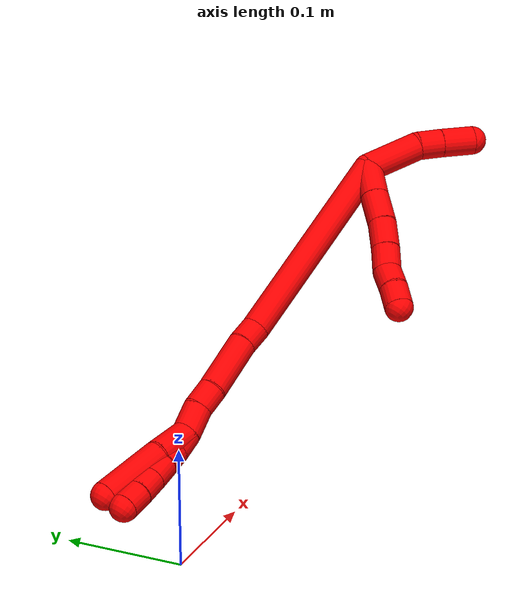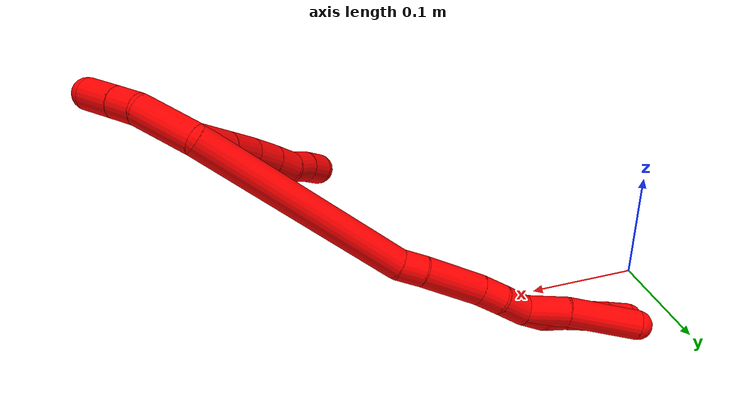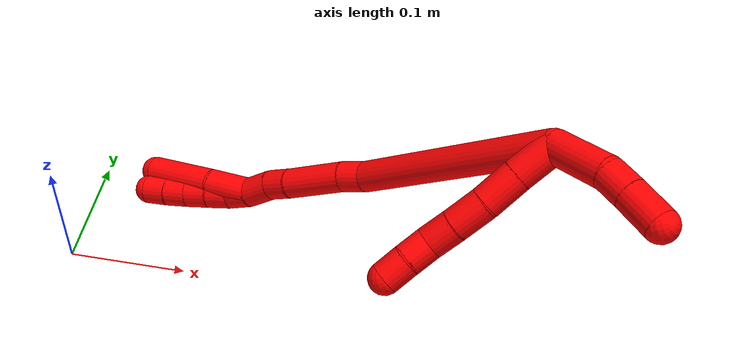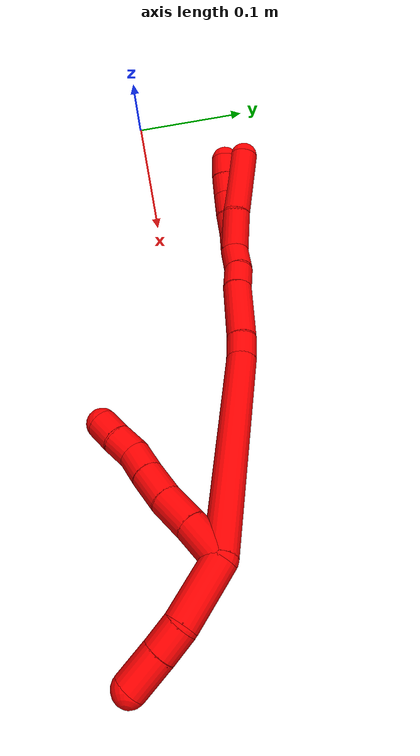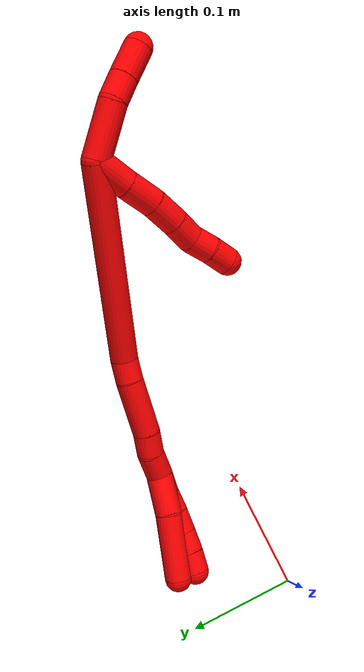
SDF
<sdf version="1.7">
 <world name="default">
  <model name="2">
   <static>0</static>
   <link name="2">
    <collision name="collision-cylinder-e_1_2_8">
     <pose>-0.004548 -0.010195 -0.011617 2.42126 -0.286192 -0.730817</pose>
     <geometry><cylinder><radius>0.0125</radius><length>0.032223</length></cylinder></geometry>
     <surface>
      <friction><ode><mu>1.16</mu><mu2>1.16</mu2><slip1>0</slip1><slip2>0</slip2></ode></friction>
      <contact><ode><kp>1e+06</kp><kd>1</kd><max_vel>0</max_vel><min_depth>0.001</min_depth></ode></contact>
     </surface>
    </collision>
    <visual name="visual-cylinder-e_1_2_8">
     <pose>-0.004548 -0.010195 -0.011617 2.42126 -0.286192 -0.730817</pose>
     <geometry><cylinder><radius>0.0125</radius><length>0.032223</length></cylinder></geometry>
     <material><ambient>1 0 0 1</ambient></material>
    </visual>
    <collision name="collision-cylinder-e_2_8_9">
     <pose>-0.013043 -0.030067 -0.03327 2.3745 -0.27586 -0.662628</pose>
     <geometry><cylinder><radius>0.0125</radius><length>0.028978</length></cylinder></geometry>
     <surface>
      <friction><ode><mu>1.16</mu><mu2>1.16</mu2><slip1>0</slip1><slip2>0</slip2></ode></friction>
      <contact><ode><kp>1e+06</kp><kd>1</kd><max_vel>0</max_vel><min_depth>0.001</min_depth></ode></contact>
     </surface>
    </collision>
    <visual name="visual-cylinder-e_2_8_9">
     <pose>-0.013043 -0.030067 -0.03327 2.3745 -0.27586 -0.662628</pose>
     <geometry><cylinder><radius>0.0125</radius><length>0.028978</length></cylinder></geometry>
     <material><ambient>1 0 0 1</ambient></material>
    </visual>
    <collision name="collision-cylinder-e_3_9_10">
     <pose>-0.02032 -0.047425 -0.053485 2.49503 -0.255484 -0.732169</pose>
     <geometry><cylinder><radius>0.0125</radius><length>0.026359</length></cylinder></geometry>
     <surface>
      <friction><ode><mu>1.16</mu><mu2>1.16</mu2><slip1>0</slip1><slip2>0</slip2></ode></friction>
      <contact><ode><kp>1e+06</kp><kd>1</kd><max_vel>0</max_vel><min_depth>0.001</min_depth></ode></contact>
     </surface>
    </collision>
    <visual name="visual-cylinder-e_3_9_10">
     <pose>-0.02032 -0.047425 -0.053485 2.49503 -0.255484 -0.732169</pose>
     <geometry><cylinder><radius>0.0125</radius><length>0.026359</length></cylinder></geometry>
     <material><ambient>1 0 0 1</ambient></material>
    </visual>
    <collision name="collision-cylinder-e_4_10_11">
     <pose>-0.026161 -0.061162 -0.07268 2.55022 -0.227138 -0.71655</pose>
     <geometry><cylinder><radius>0.0125</radius><length>0.022295</length></cylinder></geometry>
     <surface>
      <friction><ode><mu>1.16</mu><mu2>1.16</mu2><slip1>0</slip1><slip2>0</slip2></ode></friction>
      <contact><ode><kp>1e+06</kp><kd>1</kd><max_vel>0</max_vel><min_depth>0.001</min_depth></ode></contact>
     </surface>
    </collision>
    <visual name="visual-cylinder-e_4_10_11">
     <pose>-0.026161 -0.061162 -0.07268 2.55022 -0.227138 -0.71655</pose>
     <geometry><cylinder><radius>0.0125</radius><length>0.022295</length></cylinder></geometry>
     <material><ambient>1 0 0 1</ambient></material>
    </visual>
    <collision name="collision-cylinder-e_5_11_12">
     <pose>-0.032763 -0.074 -0.087866 2.30889 -0.41977 -0.897853</pose>
     <geometry><cylinder><radius>0.0125</radius><length>0.02008</length></cylinder></geometry>
     <surface>
      <friction><ode><mu>1.16</mu><mu2>1.16</mu2><slip1>0</slip1><slip2>0</slip2></ode></friction>
      <contact><ode><kp>1e+06</kp><kd>1</kd><max_vel>0</max_vel><min_depth>0.001</min_depth></ode></contact>
     </surface>
    </collision>
    <visual name="visual-cylinder-e_5_11_12">
     <pose>-0.032763 -0.074 -0.087866 2.30889 -0.41977 -0.897853</pose>
     <geometry><cylinder><radius>0.0125</radius><length>0.02008</length></cylinder></geometry>
     <material><ambient>1 0 0 1</ambient></material>
    </visual>
    <collision name="collision-cylinder-e_6_12_6">
     <pose>-0.039939 -0.087379 -0.100935 2.37867 -0.312443 -0.748347</pose>
     <geometry><cylinder><radius>0.0125</radius><length>0.020065</length></cylinder></geometry>
     <surface>
      <friction><ode><mu>1.16</mu><mu2>1.16</mu2><slip1>0</slip1><slip2>0</slip2></ode></friction>
      <contact><ode><kp>1e+06</kp><kd>1</kd><max_vel>0</max_vel><min_depth>0.001</min_depth></ode></contact>
     </surface>
    </collision>
    <visual name="visual-cylinder-e_6_12_6">
     <pose>-0.039939 -0.087379 -0.100935 2.37867 -0.312443 -0.748347</pose>
     <geometry><cylinder><radius>0.0125</radius><length>0.020065</length></cylinder></geometry>
     <material><ambient>1 0 0 1</ambient></material>
    </visual>
    <collision name="collision-cylinder-e_1_2_13">
     <pose>0.001997 -0.012794 0.020894 0.549448 0.081314 0.02293</pose>
     <geometry><cylinder><radius>0.0125</radius><length>0.049163</length></cylinder></geometry>
     <surface>
      <friction><ode><mu>1.16</mu><mu2>1.16</mu2><slip1>0</slip1><slip2>0</slip2></ode></friction>
      <contact><ode><kp>1e+06</kp><kd>1</kd><max_vel>0</max_vel><min_depth>0.001</min_depth></ode></contact>
     </surface>
    </collision>
    <visual name="visual-cylinder-e_1_2_13">
     <pose>0.001997 -0.012794 0.020894 0.549448 0.081314 0.02293</pose>
     <geometry><cylinder><radius>0.0125</radius><length>0.049163</length></cylinder></geometry>
     <material><ambient>1 0 0 1</ambient></material>
    </visual>
    <collision name="collision-cylinder-e_2_13_14">
     <pose>0.006179 -0.033266 0.04914 0.807061 0.202752 0.08681</pose>
     <geometry><cylinder><radius>0.0125</radius><length>0.021705</length></cylinder></geometry>
     <surface>
      <friction><ode><mu>1.16</mu><mu2>1.16</mu2><slip1>0</slip1><slip2>0</slip2></ode></friction>
      <contact><ode><kp>1e+06</kp><kd>1</kd><max_vel>0</max_vel><min_depth>0.001</min_depth></ode></contact>
     </surface>
    </collision>
    <visual name="visual-cylinder-e_2_13_14">
     <pose>0.006179 -0.033266 0.04914 0.807061 0.202752 0.08681</pose>
     <geometry><cylinder><radius>0.0125</radius><length>0.021705</length></cylinder></geometry>
     <material><ambient>1 0 0 1</ambient></material>
    </visual>
    <collision name="collision-cylinder-e_3_14_5">
     <pose>0.011244 -0.051591 0.066007 0.841483 0.19906 0.089308</pose>
     <geometry><cylinder><radius>0.0125</radius><length>0.029132</length></cylinder></geometry>
     <surface>
      <friction><ode><mu>1.16</mu><mu2>1.16</mu2><slip1>0</slip1><slip2>0</slip2></ode></friction>
      <contact><ode><kp>1e+06</kp><kd>1</kd><max_vel>0</max_vel><min_depth>0.001</min_depth></ode></contact>
     </surface>
    </collision>
    <visual name="visual-cylinder-e_3_14_5">
     <pose>0.011244 -0.051591 0.066007 0.841483 0.19906 0.089308</pose>
     <geometry><cylinder><radius>0.0125</radius><length>0.029132</length></cylinder></geometry>
     <material><ambient>1 0 0 1</ambient></material>
    </visual>
    <collision name="collision-cylinder-e_1_2_15">
     <pose>-0.004742 0.002223 -0.089656 -3.11681 -0.052825 2.2643</pose>
     <geometry><cylinder><radius>0.0125</radius><length>0.179617</length></cylinder></geometry>
     <surface>
      <friction><ode><mu>1.16</mu><mu2>1.16</mu2><slip1>0</slip1><slip2>0</slip2></ode></friction>
      <contact><ode><kp>1e+06</kp><kd>1</kd><max_vel>0</max_vel><min_depth>0.001</min_depth></ode></contact>
     </surface>
    </collision>
    <visual name="visual-cylinder-e_1_2_15">
     <pose>-0.004742 0.002223 -0.089656 -3.11681 -0.052825 2.2643</pose>
     <geometry><cylinder><radius>0.0125</radius><length>0.179617</length></cylinder></geometry>
     <material><ambient>1 0 0 1</ambient></material>
    </visual>
    <collision name="collision-cylinder-e_2_15_16">
     <pose>-0.012728 0.005115 -0.189192 -3.07391 -0.31661 2.72368</pose>
     <geometry><cylinder><radius>0.0125</radius><length>0.020841</length></cylinder></geometry>
     <surface>
      <friction><ode><mu>1.16</mu><mu2>1.16</mu2><slip1>0</slip1><slip2>0</slip2></ode></friction>
      <contact><ode><kp>1e+06</kp><kd>1</kd><max_vel>0</max_vel><min_depth>0.001</min_depth></ode></contact>
     </surface>
    </collision>
    <visual name="visual-cylinder-e_2_15_16">
     <pose>-0.012728 0.005115 -0.189192 -3.07391 -0.31661 2.72368</pose>
     <geometry><cylinder><radius>0.0125</radius><length>0.020841</length></cylinder></geometry>
     <material><ambient>1 0 0 1</ambient></material>
    </visual>
    <collision name="collision-cylinder-e_3_16_17">
     <pose>-0.02296 0.00472 -0.224334 3.09946 -0.269594 -2.83334</pose>
     <geometry><cylinder><radius>0.0125</radius><length>0.052465</length></cylinder></geometry>
     <surface>
      <friction><ode><mu>1.16</mu><mu2>1.16</mu2><slip1>0</slip1><slip2>0</slip2></ode></friction>
      <contact><ode><kp>1e+06</kp><kd>1</kd><max_vel>0</max_vel><min_depth>0.001</min_depth></ode></contact>
     </surface>
    </collision>
    <visual name="visual-cylinder-e_3_16_17">
     <pose>-0.02296 0.00472 -0.224334 3.09946 -0.269594 -2.83334</pose>
     <geometry><cylinder><radius>0.0125</radius><length>0.052465</length></cylinder></geometry>
     <material><ambient>1 0 0 1</ambient></material>
    </visual>
    <collision name="collision-cylinder-e_4_17_18">
     <pose>-0.031852 0.004113 -0.260098 -3.09795 -0.179318 2.66531</pose>
     <geometry><cylinder><radius>0.0125</radius><length>0.021365</length></cylinder></geometry>
     <surface>
      <friction><ode><mu>1.16</mu><mu2>1.16</mu2><slip1>0</slip1><slip2>0</slip2></ode></friction>
      <contact><ode><kp>1e+06</kp><kd>1</kd><max_vel>0</max_vel><min_depth>0.001</min_depth></ode></contact>
     </surface>
    </collision>
    <visual name="visual-cylinder-e_4_17_18">
     <pose>-0.031852 0.004113 -0.260098 -3.09795 -0.179318 2.66531</pose>
     <geometry><cylinder><radius>0.0125</radius><length>0.021365</length></cylinder></geometry>
     <material><ambient>1 0 0 1</ambient></material>
    </visual>
    <collision name="collision-cylinder-e_5_18_1">
     <pose>-0.035785 0.002449 -0.283115 2.97357 -0.158425 -1.51178</pose>
     <geometry><cylinder><radius>0.0125</radius><length>0.025711</length></cylinder></geometry>
     <surface>
      <friction><ode><mu>1.16</mu><mu2>1.16</mu2><slip1>0</slip1><slip2>0</slip2></ode></friction>
      <contact><ode><kp>1e+06</kp><kd>1</kd><max_vel>0</max_vel><min_depth>0.001</min_depth></ode></contact>
     </surface>
    </collision>
    <visual name="visual-cylinder-e_5_18_1">
     <pose>-0.035785 0.002449 -0.283115 2.97357 -0.158425 -1.51178</pose>
     <geometry><cylinder><radius>0.0125</radius><length>0.025711</length></cylinder></geometry>
     <material><ambient>1 0 0 1</ambient></material>
    </visual>
    <collision name="collision-cylinder-e_1_1_19">
     <pose>-0.047595 0.004083 -0.311339 -2.9068 -0.544592 2.3423</pose>
     <geometry><cylinder><radius>0.0125</radius><length>0.037764</length></cylinder></geometry>
     <surface>
      <friction><ode><mu>1.16</mu><mu2>1.16</mu2><slip1>0</slip1><slip2>0</slip2></ode></friction>
      <contact><ode><kp>1e+06</kp><kd>1</kd><max_vel>0</max_vel><min_depth>0.001</min_depth></ode></contact>
     </surface>
    </collision>
    <visual name="visual-cylinder-e_1_1_19">
     <pose>-0.047595 0.004083 -0.311339 -2.9068 -0.544592 2.3423</pose>
     <geometry><cylinder><radius>0.0125</radius><length>0.037764</length></cylinder></geometry>
     <material><ambient>1 0 0 1</ambient></material>
    </visual>
    <collision name="collision-cylinder-e_2_19_4">
     <pose>-0.069547 0.014556 -0.354887 -2.90491 -0.401795 2.08467</pose>
     <geometry><cylinder><radius>0.0125</radius><length>0.062236</length></cylinder></geometry>
     <surface>
      <friction><ode><mu>1.16</mu><mu2>1.16</mu2><slip1>0</slip1><slip2>0</slip2></ode></friction>
      <contact><ode><kp>1e+06</kp><kd>1</kd><max_vel>0</max_vel><min_depth>0.001</min_depth></ode></contact>
     </surface>
    </collision>
    <visual name="visual-cylinder-e_2_19_4">
     <pose>-0.069547 0.014556 -0.354887 -2.90491 -0.401795 2.08467</pose>
     <geometry><cylinder><radius>0.0125</radius><length>0.062236</length></cylinder></geometry>
     <material><ambient>1 0 0 1</ambient></material>
    </visual>
    <collision name="collision-cylinder-e_1_1_20">
     <pose>-0.040864 9.3e-05 -0.305152 3.11716 -0.310017 -2.98555</pose>
     <geometry><cylinder><radius>0.0125</radius><length>0.02</length></cylinder></geometry>
     <surface>
      <friction><ode><mu>1.16</mu><mu2>1.16</mu2><slip1>0</slip1><slip2>0</slip2></ode></friction>
      <contact><ode><kp>1e+06</kp><kd>1</kd><max_vel>0</max_vel><min_depth>0.001</min_depth></ode></contact>
     </surface>
    </collision>
    <visual name="visual-cylinder-e_1_1_20">
     <pose>-0.040864 9.3e-05 -0.305152 3.11716 -0.310017 -2.98555</pose>
     <geometry><cylinder><radius>0.0125</radius><length>0.02</length></cylinder></geometry>
     <material><ambient>1 0 0 1</ambient></material>
    </visual>
    <collision name="collision-cylinder-e_2_20_21">
     <pose>-0.049458 -0.000258 -0.322994 3.12734 -0.587511 -3.09447</pose>
     <geometry><cylinder><radius>0.0125</radius><length>0.02</length></cylinder></geometry>
     <surface>
      <friction><ode><mu>1.16</mu><mu2>1.16</mu2><slip1>0</slip1><slip2>0</slip2></ode></friction>
      <contact><ode><kp>1e+06</kp><kd>1</kd><max_vel>0</max_vel><min_depth>0.001</min_depth></ode></contact>
     </surface>
    </collision>
    <visual name="visual-cylinder-e_2_20_21">
     <pose>-0.049458 -0.000258 -0.322994 3.12734 -0.587511 -3.09447</pose>
     <geometry><cylinder><radius>0.0125</radius><length>0.02</length></cylinder></geometry>
     <material><ambient>1 0 0 1</ambient></material>
    </visual>
    <collision name="collision-cylinder-e_3_21_22">
     <pose>-0.059921 -0.000195 -0.34002 -3.12071 -0.514494 3.06224</pose>
     <geometry><cylinder><radius>0.0125</radius><length>0.02</length></cylinder></geometry>
     <surface>
      <friction><ode><mu>1.16</mu><mu2>1.16</mu2><slip1>0</slip1><slip2>0</slip2></ode></friction>
      <contact><ode><kp>1e+06</kp><kd>1</kd><max_vel>0</max_vel><min_depth>0.001</min_depth></ode></contact>
     </surface>
    </collision>
    <visual name="visual-cylinder-e_3_21_22">
     <pose>-0.059921 -0.000195 -0.34002 -3.12071 -0.514494 3.06224</pose>
     <geometry><cylinder><radius>0.0125</radius><length>0.02</length></cylinder></geometry>
     <material><ambient>1 0 0 1</ambient></material>
    </visual>
    <collision name="collision-cylinder-e_4_22_23">
     <pose>-0.069913 0.000391 -0.357333 -3.0947 -0.531758 2.96979</pose>
     <geometry><cylinder><radius>0.0125</radius><length>0.02</length></cylinder></geometry>
     <surface>
      <friction><ode><mu>1.16</mu><mu2>1.16</mu2><slip1>0</slip1><slip2>0</slip2></ode></friction>
      <contact><ode><kp>1e+06</kp><kd>1</kd><max_vel>0</max_vel><min_depth>0.001</min_depth></ode></contact>
     </surface>
    </collision>
    <visual name="visual-cylinder-e_4_22_23">
     <pose>-0.069913 0.000391 -0.357333 -3.0947 -0.531758 2.96979</pose>
     <geometry><cylinder><radius>0.0125</radius><length>0.02</length></cylinder></geometry>
     <material><ambient>1 0 0 1</ambient></material>
    </visual>
    <collision name="collision-cylinder-e_5_23_3">
     <pose>-0.079761 0.001789 -0.374672 -3.02818 -0.498087 2.70236</pose>
     <geometry><cylinder><radius>0.0125</radius><length>0.02</length></cylinder></geometry>
     <surface>
      <friction><ode><mu>1.16</mu><mu2>1.16</mu2><slip1>0</slip1><slip2>0</slip2></ode></friction>
      <contact><ode><kp>1e+06</kp><kd>1</kd><max_vel>0</max_vel><min_depth>0.001</min_depth></ode></contact>
     </surface>
    </collision>
    <visual name="visual-cylinder-e_5_23_3">
     <pose>-0.079761 0.001789 -0.374672 -3.02818 -0.498087 2.70236</pose>
     <geometry><cylinder><radius>0.0125</radius><length>0.02</length></cylinder></geometry>
     <material><ambient>1 0 0 1</ambient></material>
    </visual>
    <collision name="collision-sphere-3">
     <pose>-0.084538 0.002784 -0.3834 0 -0 0</pose>
     <geometry><sphere><radius>0.0125</radius></sphere></geometry>
     <surface>
      <friction><ode><mu>1.16</mu><mu2>1.16</mu2><slip1>0</slip1><slip2>0</slip2></ode></friction>
      <contact><ode><kp>1e+06</kp><kd>1</kd><max_vel>0</max_vel><min_depth>0.001</min_depth></ode></contact>
     </surface>
    </collision>
    <visual name="visual-sphere-3">
     <pose>-0.084538 0.002784 -0.3834 0 -0 0</pose>
     <geometry><sphere><radius>0.0125</radius></sphere></geometry>
     <material><ambient>1 0 0 1</ambient></material>
    </visual>
    <collision name="collision-sphere-23">
     <pose>-0.074983 0.000795 -0.365943 0 -0 0</pose>
     <geometry><sphere><radius>0.0125</radius></sphere></geometry>
     <surface>
      <friction><ode><mu>1.16</mu><mu2>1.16</mu2><slip1>0</slip1><slip2>0</slip2></ode></friction>
      <contact><ode><kp>1e+06</kp><kd>1</kd><max_vel>0</max_vel><min_depth>0.001</min_depth></ode></contact>
     </surface>
    </collision>
    <visual name="visual-sphere-23">
     <pose>-0.074983 0.000795 -0.365943 0 -0 0</pose>
     <geometry><sphere><radius>0.0125</radius></sphere></geometry>
     <material><ambient>1 0 0 1</ambient></material>
    </visual>
    <collision name="collision-sphere-22">
     <pose>-0.064842 -1.3e-05 -0.348724 0 -0 0</pose>
     <geometry><sphere><radius>0.0125</radius></sphere></geometry>
     <surface>
      <friction><ode><mu>1.16</mu><mu2>1.16</mu2><slip1>0</slip1><slip2>0</slip2></ode></friction>
      <contact><ode><kp>1e+06</kp><kd>1</kd><max_vel>0</max_vel><min_depth>0.001</min_depth></ode></contact>
     </surface>
    </collision>
    <visual name="visual-sphere-22">
     <pose>-0.064842 -1.3e-05 -0.348724 0 -0 0</pose>
     <geometry><sphere><radius>0.0125</radius></sphere></geometry>
     <material><ambient>1 0 0 1</ambient></material>
    </visual>
    <collision name="collision-sphere-21">
     <pose>-0.055001 -0.000377 -0.331317 0 -0 0</pose>
     <geometry><sphere><radius>0.0125</radius></sphere></geometry>
     <surface>
      <friction><ode><mu>1.16</mu><mu2>1.16</mu2><slip1>0</slip1><slip2>0</slip2></ode></friction>
      <contact><ode><kp>1e+06</kp><kd>1</kd><max_vel>0</max_vel><min_depth>0.001</min_depth></ode></contact>
     </surface>
    </collision>
    <visual name="visual-sphere-21">
     <pose>-0.055001 -0.000377 -0.331317 0 -0 0</pose>
     <geometry><sphere><radius>0.0125</radius></sphere></geometry>
     <material><ambient>1 0 0 1</ambient></material>
    </visual>
    <collision name="collision-sphere-20">
     <pose>-0.043915 -0.000139 -0.314672 0 -0 0</pose>
     <geometry><sphere><radius>0.0125</radius></sphere></geometry>
     <surface>
      <friction><ode><mu>1.16</mu><mu2>1.16</mu2><slip1>0</slip1><slip2>0</slip2></ode></friction>
      <contact><ode><kp>1e+06</kp><kd>1</kd><max_vel>0</max_vel><min_depth>0.001</min_depth></ode></contact>
     </surface>
    </collision>
    <visual name="visual-sphere-20">
     <pose>-0.043915 -0.000139 -0.314672 0 -0 0</pose>
     <geometry><sphere><radius>0.0125</radius></sphere></geometry>
     <material><ambient>1 0 0 1</ambient></material>
    </visual>
    <collision name="collision-sphere-4">
     <pose>-0.081716 0.021272 -0.382728 0 -0 0</pose>
     <geometry><sphere><radius>0.0125</radius></sphere></geometry>
     <surface>
      <friction><ode><mu>1.16</mu><mu2>1.16</mu2><slip1>0</slip1><slip2>0</slip2></ode></friction>
      <contact><ode><kp>1e+06</kp><kd>1</kd><max_vel>0</max_vel><min_depth>0.001</min_depth></ode></contact>
     </surface>
    </collision>
    <visual name="visual-sphere-4">
     <pose>-0.081716 0.021272 -0.382728 0 -0 0</pose>
     <geometry><sphere><radius>0.0125</radius></sphere></geometry>
     <material><ambient>1 0 0 1</ambient></material>
    </visual>
    <collision name="collision-sphere-12">
     <pose>-0.036855 -0.080782 -0.094035 0 -0 0</pose>
     <geometry><sphere><radius>0.0125</radius></sphere></geometry>
     <surface>
      <friction><ode><mu>1.16</mu><mu2>1.16</mu2><slip1>0</slip1><slip2>0</slip2></ode></friction>
      <contact><ode><kp>1e+06</kp><kd>1</kd><max_vel>0</max_vel><min_depth>0.001</min_depth></ode></contact>
     </surface>
    </collision>
    <visual name="visual-sphere-12">
     <pose>-0.036855 -0.080782 -0.094035 0 -0 0</pose>
     <geometry><sphere><radius>0.0125</radius></sphere></geometry>
     <material><ambient>1 0 0 1</ambient></material>
    </visual>
    <collision name="collision-sphere-11">
     <pose>-0.028671 -0.067218 -0.081696 0 -0 0</pose>
     <geometry><sphere><radius>0.0125</radius></sphere></geometry>
     <surface>
      <friction><ode><mu>1.16</mu><mu2>1.16</mu2><slip1>0</slip1><slip2>0</slip2></ode></friction>
      <contact><ode><kp>1e+06</kp><kd>1</kd><max_vel>0</max_vel><min_depth>0.001</min_depth></ode></contact>
     </surface>
    </collision>
    <visual name="visual-sphere-11">
     <pose>-0.028671 -0.067218 -0.081696 0 -0 0</pose>
     <geometry><sphere><radius>0.0125</radius></sphere></geometry>
     <material><ambient>1 0 0 1</ambient></material>
    </visual>
    <collision name="collision-sphere-10">
     <pose>-0.023651 -0.055107 -0.063663 0 -0 0</pose>
     <geometry><sphere><radius>0.0125</radius></sphere></geometry>
     <surface>
      <friction><ode><mu>1.16</mu><mu2>1.16</mu2><slip1>0</slip1><slip2>0</slip2></ode></friction>
      <contact><ode><kp>1e+06</kp><kd>1</kd><max_vel>0</max_vel><min_depth>0.001</min_depth></ode></contact>
     </surface>
    </collision>
    <visual name="visual-sphere-10">
     <pose>-0.023651 -0.055107 -0.063663 0 -0 0</pose>
     <geometry><sphere><radius>0.0125</radius></sphere></geometry>
     <material><ambient>1 0 0 1</ambient></material>
    </visual>
    <collision name="collision-sphere-9">
     <pose>-0.01699 -0.039743 -0.043307 0 -0 0</pose>
     <geometry><sphere><radius>0.0125</radius></sphere></geometry>
     <surface>
      <friction><ode><mu>1.16</mu><mu2>1.16</mu2><slip1>0</slip1><slip2>0</slip2></ode></friction>
      <contact><ode><kp>1e+06</kp><kd>1</kd><max_vel>0</max_vel><min_depth>0.001</min_depth></ode></contact>
     </surface>
    </collision>
    <visual name="visual-sphere-9">
     <pose>-0.01699 -0.039743 -0.043307 0 -0 0</pose>
     <geometry><sphere><radius>0.0125</radius></sphere></geometry>
     <material><ambient>1 0 0 1</ambient></material>
    </visual>
    <collision name="collision-sphere-2">
     <geometry><sphere><radius>0.0125</radius></sphere></geometry>
     <surface>
      <friction><ode><mu>1.16</mu><mu2>1.16</mu2><slip1>0</slip1><slip2>0</slip2></ode></friction>
      <contact><ode><kp>1e+06</kp><kd>1</kd><max_vel>0</max_vel><min_depth>0.001</min_depth></ode></contact>
     </surface>
    </collision>
    <visual name="visual-sphere-2">
     <geometry><sphere><radius>0.0125</radius></sphere></geometry>
     <material><ambient>1 0 0 1</ambient></material>
    </visual>
    <collision name="collision-sphere-19">
     <pose>-0.057378 0.007841 -0.327046 0 -0 0</pose>
     <geometry><sphere><radius>0.0125</radius></sphere></geometry>
     <surface>
      <friction><ode><mu>1.16</mu><mu2>1.16</mu2><slip1>0</slip1><slip2>0</slip2></ode></friction>
      <contact><ode><kp>1e+06</kp><kd>1</kd><max_vel>0</max_vel><min_depth>0.001</min_depth></ode></contact>
     </surface>
    </collision>
    <visual name="visual-sphere-19">
     <pose>-0.057378 0.007841 -0.327046 0 -0 0</pose>
     <geometry><sphere><radius>0.0125</radius></sphere></geometry>
     <material><ambient>1 0 0 1</ambient></material>
    </visual>
    <collision name="collision-sphere-8">
     <pose>-0.009097 -0.020391 -0.023233 0 -0 0</pose>
     <geometry><sphere><radius>0.0125</radius></sphere></geometry>
     <surface>
      <friction><ode><mu>1.16</mu><mu2>1.16</mu2><slip1>0</slip1><slip2>0</slip2></ode></friction>
      <contact><ode><kp>1e+06</kp><kd>1</kd><max_vel>0</max_vel><min_depth>0.001</min_depth></ode></contact>
     </surface>
    </collision>
    <visual name="visual-sphere-8">
     <pose>-0.009097 -0.020391 -0.023233 0 -0 0</pose>
     <geometry><sphere><radius>0.0125</radius></sphere></geometry>
     <material><ambient>1 0 0 1</ambient></material>
    </visual>
    <collision name="collision-sphere-6">
     <pose>-0.043023 -0.093976 -0.107835 0 -0 0</pose>
     <geometry><sphere><radius>0.0125</radius></sphere></geometry>
     <surface>
      <friction><ode><mu>1.16</mu><mu2>1.16</mu2><slip1>0</slip1><slip2>0</slip2></ode></friction>
      <contact><ode><kp>1e+06</kp><kd>1</kd><max_vel>0</max_vel><min_depth>0.001</min_depth></ode></contact>
     </surface>
    </collision>
    <visual name="visual-sphere-6">
     <pose>-0.043023 -0.093976 -0.107835 0 -0 0</pose>
     <geometry><sphere><radius>0.0125</radius></sphere></geometry>
     <material><ambient>1 0 0 1</ambient></material>
    </visual>
    <collision name="collision-sphere-13">
     <pose>0.003993 -0.025589 0.041788 0 -0 0</pose>
     <geometry><sphere><radius>0.0125</radius></sphere></geometry>
     <surface>
      <friction><ode><mu>1.16</mu><mu2>1.16</mu2><slip1>0</slip1><slip2>0</slip2></ode></friction>
      <contact><ode><kp>1e+06</kp><kd>1</kd><max_vel>0</max_vel><min_depth>0.001</min_depth></ode></contact>
     </surface>
    </collision>
    <visual name="visual-sphere-13">
     <pose>0.003993 -0.025589 0.041788 0 -0 0</pose>
     <geometry><sphere><radius>0.0125</radius></sphere></geometry>
     <material><ambient>1 0 0 1</ambient></material>
    </visual>
    <collision name="collision-sphere-14">
     <pose>0.008364 -0.040944 0.056492 0 -0 0</pose>
     <geometry><sphere><radius>0.0125</radius></sphere></geometry>
     <surface>
      <friction><ode><mu>1.16</mu><mu2>1.16</mu2><slip1>0</slip1><slip2>0</slip2></ode></friction>
      <contact><ode><kp>1e+06</kp><kd>1</kd><max_vel>0</max_vel><min_depth>0.001</min_depth></ode></contact>
     </surface>
    </collision>
    <visual name="visual-sphere-14">
     <pose>0.008364 -0.040944 0.056492 0 -0 0</pose>
     <geometry><sphere><radius>0.0125</radius></sphere></geometry>
     <material><ambient>1 0 0 1</ambient></material>
    </visual>
    <collision name="collision-sphere-5">
     <pose>0.014125 -0.062237 0.075521 0 -0 0</pose>
     <geometry><sphere><radius>0.0125</radius></sphere></geometry>
     <surface>
      <friction><ode><mu>1.16</mu><mu2>1.16</mu2><slip1>0</slip1><slip2>0</slip2></ode></friction>
      <contact><ode><kp>1e+06</kp><kd>1</kd><max_vel>0</max_vel><min_depth>0.001</min_depth></ode></contact>
     </surface>
    </collision>
    <visual name="visual-sphere-5">
     <pose>0.014125 -0.062237 0.075521 0 -0 0</pose>
     <geometry><sphere><radius>0.0125</radius></sphere></geometry>
     <material><ambient>1 0 0 1</ambient></material>
    </visual>
    <collision name="collision-sphere-15">
     <pose>-0.009484 0.004445 -0.179312 0 -0 0</pose>
     <geometry><sphere><radius>0.0125</radius></sphere></geometry>
     <surface>
      <friction><ode><mu>1.16</mu><mu2>1.16</mu2><slip1>0</slip1><slip2>0</slip2></ode></friction>
      <contact><ode><kp>1e+06</kp><kd>1</kd><max_vel>0</max_vel><min_depth>0.001</min_depth></ode></contact>
     </surface>
    </collision>
    <visual name="visual-sphere-15">
     <pose>-0.009484 0.004445 -0.179312 0 -0 0</pose>
     <geometry><sphere><radius>0.0125</radius></sphere></geometry>
     <material><ambient>1 0 0 1</ambient></material>
    </visual>
    <collision name="collision-sphere-16">
     <pose>-0.015973 0.005785 -0.199072 0 -0 0</pose>
     <geometry><sphere><radius>0.0125</radius></sphere></geometry>
     <surface>
      <friction><ode><mu>1.16</mu><mu2>1.16</mu2><slip1>0</slip1><slip2>0</slip2></ode></friction>
      <contact><ode><kp>1e+06</kp><kd>1</kd><max_vel>0</max_vel><min_depth>0.001</min_depth></ode></contact>
     </surface>
    </collision>
    <visual name="visual-sphere-16">
     <pose>-0.015973 0.005785 -0.199072 0 -0 0</pose>
     <geometry><sphere><radius>0.0125</radius></sphere></geometry>
     <material><ambient>1 0 0 1</ambient></material>
    </visual>
    <collision name="collision-sphere-17">
     <pose>-0.029946 0.003655 -0.249597 0 -0 0</pose>
     <geometry><sphere><radius>0.0125</radius></sphere></geometry>
     <surface>
      <friction><ode><mu>1.16</mu><mu2>1.16</mu2><slip1>0</slip1><slip2>0</slip2></ode></friction>
      <contact><ode><kp>1e+06</kp><kd>1</kd><max_vel>0</max_vel><min_depth>0.001</min_depth></ode></contact>
     </surface>
    </collision>
    <visual name="visual-sphere-17">
     <pose>-0.029946 0.003655 -0.249597 0 -0 0</pose>
     <geometry><sphere><radius>0.0125</radius></sphere></geometry>
     <material><ambient>1 0 0 1</ambient></material>
    </visual>
    <collision name="collision-sphere-18">
     <pose>-0.033757 0.004572 -0.2706 0 -0 0</pose>
     <geometry><sphere><radius>0.0125</radius></sphere></geometry>
     <surface>
      <friction><ode><mu>1.16</mu><mu2>1.16</mu2><slip1>0</slip1><slip2>0</slip2></ode></friction>
      <contact><ode><kp>1e+06</kp><kd>1</kd><max_vel>0</max_vel><min_depth>0.001</min_depth></ode></contact>
     </surface>
    </collision>
    <visual name="visual-sphere-18">
     <pose>-0.033757 0.004572 -0.2706 0 -0 0</pose>
     <geometry><sphere><radius>0.0125</radius></sphere></geometry>
     <material><ambient>1 0 0 1</ambient></material>
    </visual>
    <collision name="collision-sphere-1">
     <pose>-0.037813 0.000326 -0.295631 0 -0 0</pose>
     <geometry><sphere><radius>0.0125</radius></sphere></geometry>
     <surface>
      <friction><ode><mu>1.16</mu><mu2>1.16</mu2><slip1>0</slip1><slip2>0</slip2></ode></friction>
      <contact><ode><kp>1e+06</kp><kd>1</kd><max_vel>0</max_vel><min_depth>0.001</min_depth></ode></contact>
     </surface>
    </collision>
    <visual name="visual-sphere-1">
     <pose>-0.037813 0.000326 -0.295631 0 -0 0</pose>
     <geometry><sphere><radius>0.0125</radius></sphere></geometry>
     <material><ambient>1 0 0 1</ambient></material>
    </visual>
    <inertial>
     <pose>-0.024785 -0.010541 -0.155522 0 -0 0</pose>
     <mass>0.75</mass>
     <inertia><ixx>5.1e-05</ixx><ixy>0</ixy><ixz>0</ixz><iyy>0.000736</iyy><iyz>0</iyz><izz>1e-05</izz></inertia>
    </inertial>
   </link>
   <pose>0.382527 0.001941 0.205222 0.564025 0.697574 0.436284</pose>
  </model>
 </world>
</sdf>
